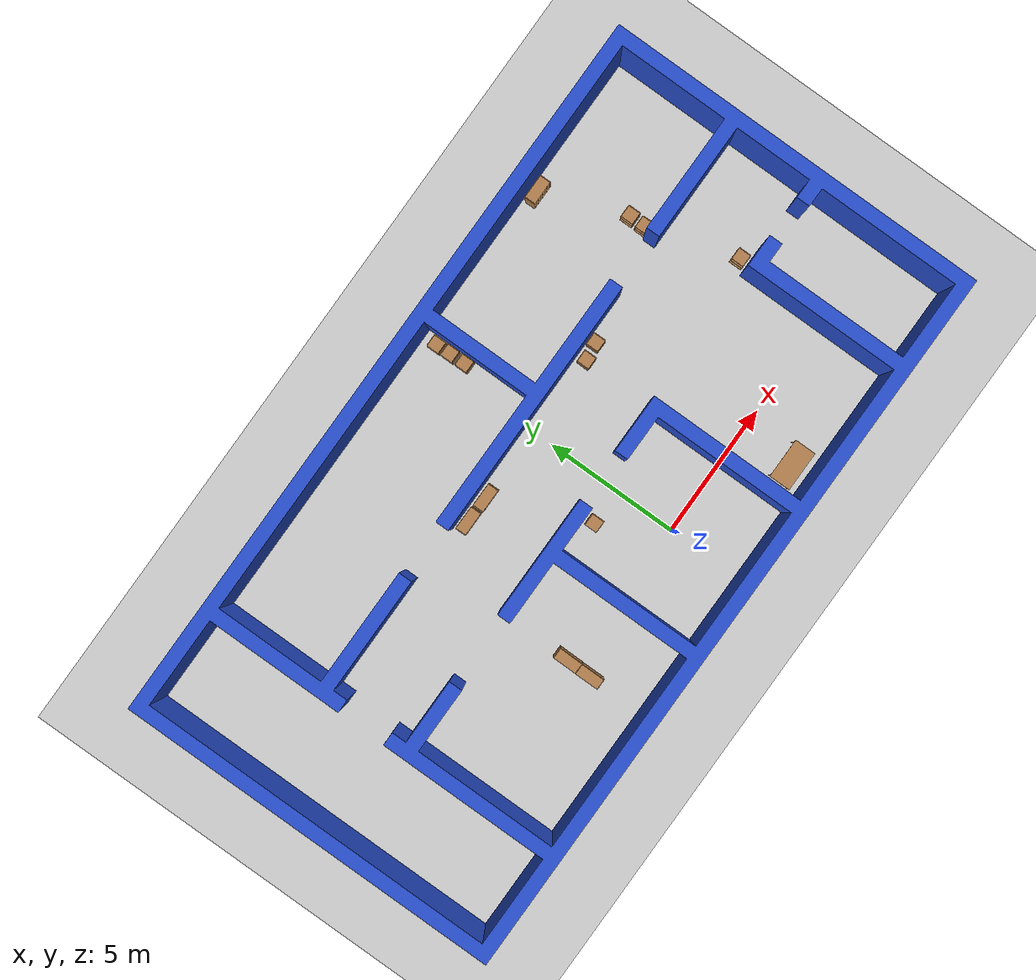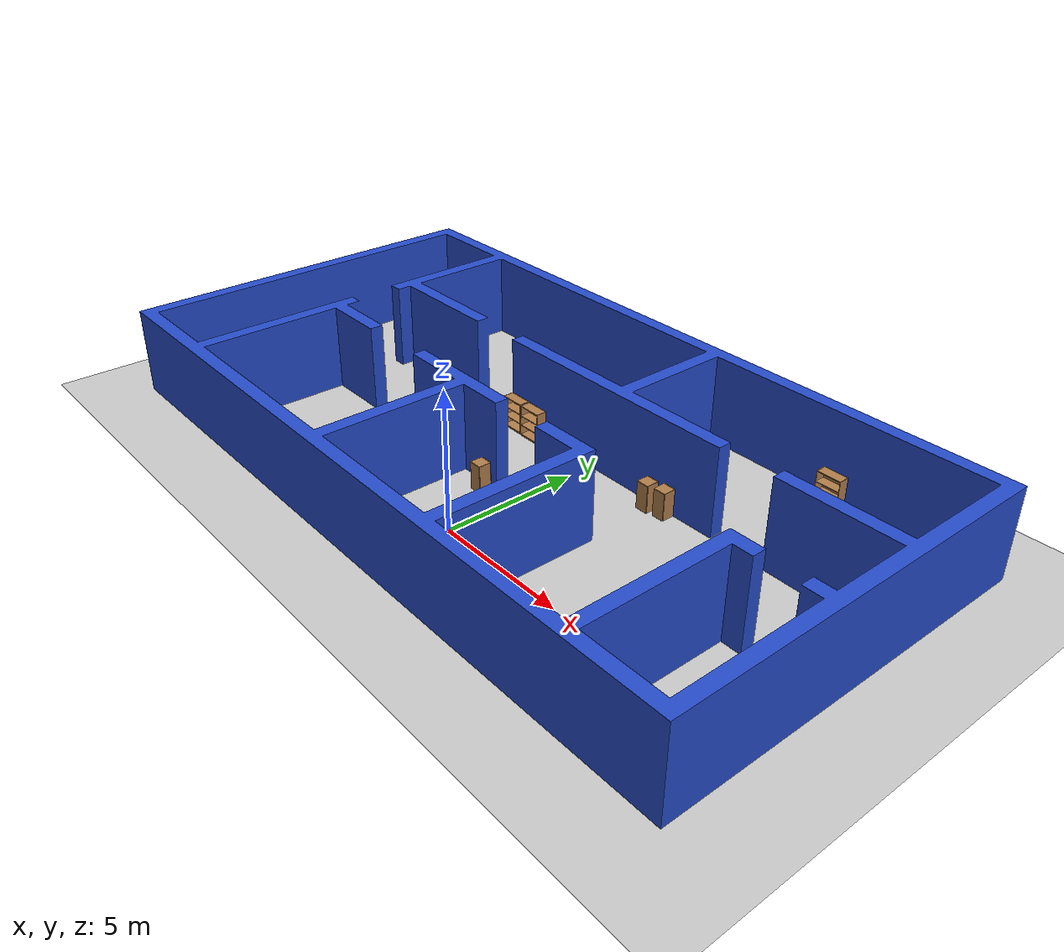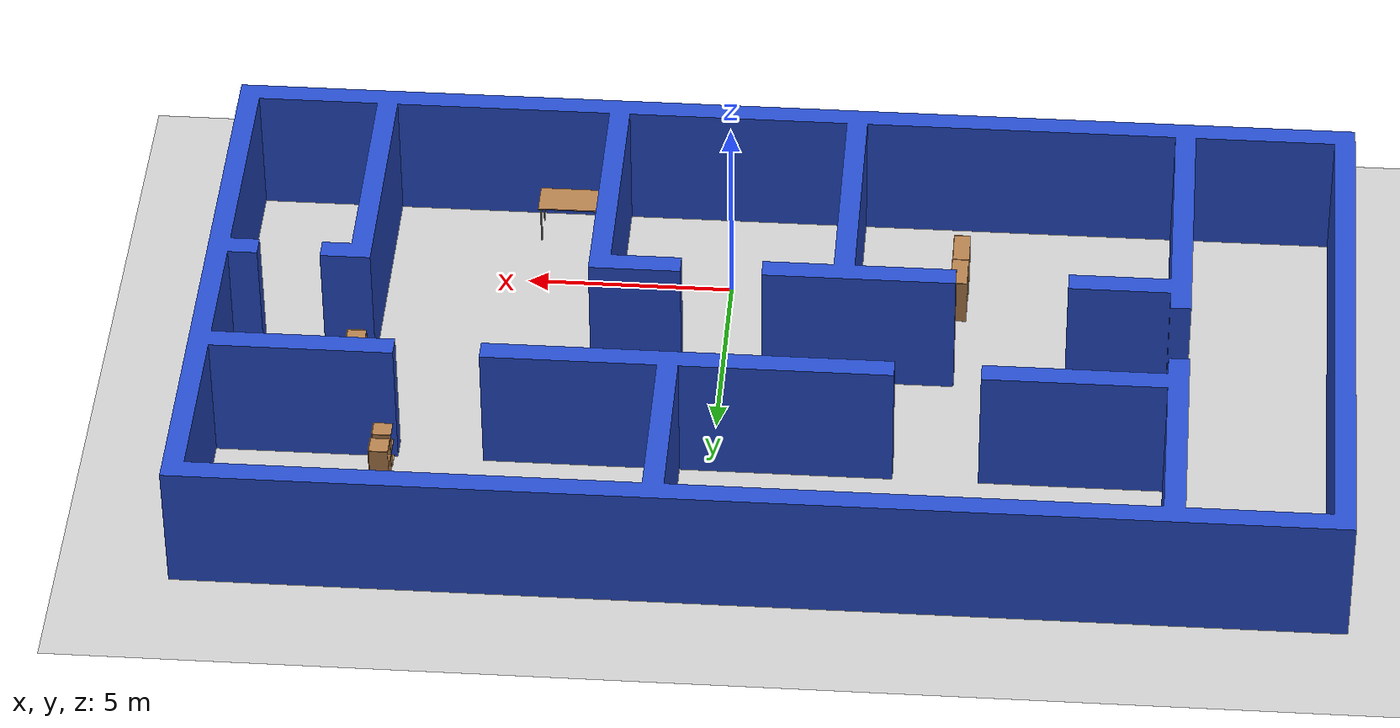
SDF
<sdf version="1.7">
 <world name="default">
  <model name="ground_plane">
   <static>1</static>
   <link name="link">
    <collision name="collision">
     <geometry><plane><normal>0 0 1</normal><size>100 100</size></plane></geometry>
     <surface>
      <contact><collide_bitmask>65535</collide_bitmask></contact>
      <friction><ode><mu>100</mu><mu2>50</mu2></ode></friction>
     </surface>
    </collision>
    <visual name="visual">
     <cast_shadows>0</cast_shadows>
     <geometry><plane><normal>0 0 1</normal><size>100 100</size></plane></geometry>
     <material>
      <script><uri>file://media/materials/scripts/gazebo.material</uri><name>Gazebo/Grey</name></script>
     </material>
    </visual>
   </link>
  </model>
  <model name="office_better">
   <static>1</static>
   <frame name="object_frame"><pose relative_to="/world">0 0 0 0 -0 0</pose></frame>
   <pose relative_to="/world">32.0153 31.9937 31.8978 0 -0 0</pose>
   <link name="link">
    <pose>-32 -32 -32 0 -0 0</pose>
    <inertial>
     <mass>239.5</mass>
     <inertia>
      <ixx>6464.83</ixx>
      <ixy>225.633</ixy>
      <ixz>0</ixz>
      <iyy>19267</iyy>
      <iyz>0</iyz>
      <izz>25283.1</izz>
     </inertia>
     <pose relative_to="link_inertia_frame">-1.35 3.89 1.68 0 -0 0</pose>
     <frame name="link_inertia_frame"><pose relative_to="link_frame">0 0 0 0 -0 0</pose></frame>
    </inertial>
    <collision name="collision">
     <max_contacts>20</max_contacts>
     <pose relative_to="collision_frame">0 0 0 0 -0 0</pose>
     <geometry><mesh><uri>./model/office_better/meshes/mesh.stl</uri><scale>1 1 1</scale></mesh></geometry>
     <frame name="collision_frame"><pose relative_to="link_frame">0 0 0 0 -0 0</pose></frame>
    </collision>
    <visual name="visual">
     <pose relative_to="visual_frame">0 0 0 0 -0 0</pose>
     <material>
      <script><uri>file://media/materials/scripts/gazebo.material</uri><name>Gazebo/Blue</name></script>
      <shader type="vertex"><normal_map>__default__</normal_map></shader>
      <lighting>1</lighting>
      <ambient>0.15 0.75 0.35 1</ambient>
      <diffuse>0.1 0.95 0.25 1</diffuse>
      <specular>0.01 0.01 0.01 1</specular>
      <emissive>0 0 0 1</emissive>
     </material>
     <geometry><mesh><uri>./model/office_better/meshes/mesh.stl</uri><scale>1 1 1</scale></mesh></geometry>
     <frame name="visual_frame"><pose relative_to="link_frame">0 0 0 0 -0 0</pose></frame>
    </visual>
    <frame name="link_frame"><pose relative_to="object_frame">0 0 0 0 -0 0</pose></frame>
   </link>
  </model>
  <model name="cabinet_0">
   <static>1</static>
   <link name="cabinet_bottom_plate">
    <inertial>
     <pose>0 0 -1 0 -0 0</pose>
     <inertia><ixx>2.05</ixx><ixy>0</ixy><ixz>0</ixz><iyy>2.05</iyy><iyz>0</iyz><izz>2.05</izz></inertia>
     <mass>25</mass>
    </inertial>
    <collision name="cabinet_bottom_plate_geom">
     <pose>0 0 0.01 0 -0 0</pose>
     <geometry><box><size>0.45 0.45 0.02</size></box></geometry>
    </collision>
    <visual name="cabinet_bottom_plate_geom_visual">
     <pose>0 0 0.01 0 -0 0</pose>
     <geometry><box><size>0.45 0.45 0.02</size></box></geometry>
     <material>
      <script><uri>file://media/materials/scripts/gazebo.material</uri><name>Gazebo/Wood</name></script>
     </material>
    </visual>
    <collision name="cabinet_bottom_plate_geom_cabinet_back_plate">
     <pose>0.235 0 0.51 0 -0 0</pose>
     <geometry><box><size>0.02 0.45 1.02</size></box></geometry>
    </collision>
    <visual name="cabinet_bottom_plate_geom_cabinet_back_plate_visual">
     <pose>0.235 0 0.51 0 -0 0</pose>
     <geometry><box><size>0.02 0.45 1.02</size></box></geometry>
     <material>
      <script><uri>file://media/materials/scripts/gazebo.material</uri><name>Gazebo/Wood</name></script>
     </material>
    </visual>
    <collision name="cabinet_bottom_plate_geom_cabinet_left_plate">
     <pose>0 0.235 0.51 0 -0 0</pose>
     <geometry><box><size>0.45 0.02 1.02</size></box></geometry>
    </collision>
    <visual name="cabinet_bottom_plate_geom_cabinet_left_plate_visual">
     <pose>0 0.235 0.51 0 -0 0</pose>
     <geometry><box><size>0.45 0.02 1.02</size></box></geometry>
     <material>
      <script><uri>file://media/materials/scripts/gazebo.material</uri><name>Gazebo/Wood</name></script>
     </material>
    </visual>
    <collision name="cabinet_bottom_plate_geom_cabinet_middle_plate">
     <pose>0 0 0.51 0 -0 0</pose>
     <geometry><box><size>0.45 0.45 0.02</size></box></geometry>
    </collision>
    <visual name="cabinet_bottom_plate_geom_cabinet_middle_plate_visual">
     <pose>0 0 0.51 0 -0 0</pose>
     <geometry><box><size>0.45 0.45 0.02</size></box></geometry>
     <material>
      <script><uri>file://media/materials/scripts/gazebo.material</uri><name>Gazebo/Wood</name></script>
     </material>
    </visual>
    <collision name="cabinet_bottom_plate_geom_cabinet_right_plate">
     <pose>0 -0.235 0.51 0 -0 0</pose>
     <geometry><box><size>0.45 0.02 1.02</size></box></geometry>
    </collision>
    <visual name="cabinet_bottom_plate_geom_cabinet_right_plate_visual">
     <pose>0 -0.235 0.51 0 -0 0</pose>
     <geometry><box><size>0.45 0.02 1.02</size></box></geometry>
     <material>
      <script><uri>file://media/materials/scripts/gazebo.material</uri><name>Gazebo/Wood</name></script>
     </material>
    </visual>
    <collision name="cabinet_bottom_plate_geom_cabinet_top_plate">
     <pose>0 0 1.01 0 -0 0</pose>
     <geometry><box><size>0.45 0.45 0.02</size></box></geometry>
    </collision>
    <visual name="cabinet_bottom_plate_geom_cabinet_top_plate_visual">
     <pose>0 0 1.01 0 -0 0</pose>
     <geometry><box><size>0.45 0.45 0.02</size></box></geometry>
     <material>
      <script><uri>file://media/materials/scripts/gazebo.material</uri><name>Gazebo/Wood</name></script>
     </material>
    </visual>
   </link>
   <pose>3.65099 5.79416 0 0 -0 0</pose>
  </model>
  <model name="cabinet_1">
   <static>1</static>
   <link name="cabinet_bottom_plate">
    <inertial>
     <pose>0 0 -1 0 -0 0</pose>
     <inertia><ixx>2.05</ixx><ixy>0</ixy><ixz>0</ixz><iyy>2.05</iyy><iyz>0</iyz><izz>2.05</izz></inertia>
     <mass>25</mass>
    </inertial>
    <collision name="cabinet_bottom_plate_geom">
     <pose>0 0 0.01 0 -0 0</pose>
     <geometry><box><size>0.45 0.45 0.02</size></box></geometry>
    </collision>
    <visual name="cabinet_bottom_plate_geom_visual">
     <pose>0 0 0.01 0 -0 0</pose>
     <geometry><box><size>0.45 0.45 0.02</size></box></geometry>
     <material>
      <script><uri>file://media/materials/scripts/gazebo.material</uri><name>Gazebo/Wood</name></script>
     </material>
    </visual>
    <collision name="cabinet_bottom_plate_geom_cabinet_back_plate">
     <pose>0.235 0 0.51 0 -0 0</pose>
     <geometry><box><size>0.02 0.45 1.02</size></box></geometry>
    </collision>
    <visual name="cabinet_bottom_plate_geom_cabinet_back_plate_visual">
     <pose>0.235 0 0.51 0 -0 0</pose>
     <geometry><box><size>0.02 0.45 1.02</size></box></geometry>
     <material>
      <script><uri>file://media/materials/scripts/gazebo.material</uri><name>Gazebo/Wood</name></script>
     </material>
    </visual>
    <collision name="cabinet_bottom_plate_geom_cabinet_left_plate">
     <pose>0 0.235 0.51 0 -0 0</pose>
     <geometry><box><size>0.45 0.02 1.02</size></box></geometry>
    </collision>
    <visual name="cabinet_bottom_plate_geom_cabinet_left_plate_visual">
     <pose>0 0.235 0.51 0 -0 0</pose>
     <geometry><box><size>0.45 0.02 1.02</size></box></geometry>
     <material>
      <script><uri>file://media/materials/scripts/gazebo.material</uri><name>Gazebo/Wood</name></script>
     </material>
    </visual>
    <collision name="cabinet_bottom_plate_geom_cabinet_middle_plate">
     <pose>0 0 0.51 0 -0 0</pose>
     <geometry><box><size>0.45 0.45 0.02</size></box></geometry>
    </collision>
    <visual name="cabinet_bottom_plate_geom_cabinet_middle_plate_visual">
     <pose>0 0 0.51 0 -0 0</pose>
     <geometry><box><size>0.45 0.45 0.02</size></box></geometry>
     <material>
      <script><uri>file://media/materials/scripts/gazebo.material</uri><name>Gazebo/Wood</name></script>
     </material>
    </visual>
    <collision name="cabinet_bottom_plate_geom_cabinet_right_plate">
     <pose>0 -0.235 0.51 0 -0 0</pose>
     <geometry><box><size>0.45 0.02 1.02</size></box></geometry>
    </collision>
    <visual name="cabinet_bottom_plate_geom_cabinet_right_plate_visual">
     <pose>0 -0.235 0.51 0 -0 0</pose>
     <geometry><box><size>0.45 0.02 1.02</size></box></geometry>
     <material>
      <script><uri>file://media/materials/scripts/gazebo.material</uri><name>Gazebo/Wood</name></script>
     </material>
    </visual>
    <collision name="cabinet_bottom_plate_geom_cabinet_top_plate">
     <pose>0 0 1.01 0 -0 0</pose>
     <geometry><box><size>0.45 0.45 0.02</size></box></geometry>
    </collision>
    <visual name="cabinet_bottom_plate_geom_cabinet_top_plate_visual">
     <pose>0 0 1.01 0 -0 0</pose>
     <geometry><box><size>0.45 0.45 0.02</size></box></geometry>
     <material>
      <script><uri>file://media/materials/scripts/gazebo.material</uri><name>Gazebo/Wood</name></script>
     </material>
    </visual>
   </link>
   <pose>2.99721 5.70704 0 0 -0 0</pose>
  </model>
  <model name="cabinet_2">
   <static>1</static>
   <link name="cabinet_bottom_plate">
    <inertial>
     <pose>0 0 -1 0 -0 0</pose>
     <inertia><ixx>2.05</ixx><ixy>0</ixy><ixz>0</ixz><iyy>2.05</iyy><iyz>0</iyz><izz>2.05</izz></inertia>
     <mass>25</mass>
    </inertial>
    <collision name="cabinet_bottom_plate_geom">
     <pose>0 0 0.01 0 -0 0</pose>
     <geometry><box><size>0.45 0.45 0.02</size></box></geometry>
    </collision>
    <visual name="cabinet_bottom_plate_geom_visual">
     <pose>0 0 0.01 0 -0 0</pose>
     <geometry><box><size>0.45 0.45 0.02</size></box></geometry>
     <material>
      <script><uri>file://media/materials/scripts/gazebo.material</uri><name>Gazebo/Wood</name></script>
     </material>
    </visual>
    <collision name="cabinet_bottom_plate_geom_cabinet_back_plate">
     <pose>0.235 0 0.51 0 -0 0</pose>
     <geometry><box><size>0.02 0.45 1.02</size></box></geometry>
    </collision>
    <visual name="cabinet_bottom_plate_geom_cabinet_back_plate_visual">
     <pose>0.235 0 0.51 0 -0 0</pose>
     <geometry><box><size>0.02 0.45 1.02</size></box></geometry>
     <material>
      <script><uri>file://media/materials/scripts/gazebo.material</uri><name>Gazebo/Wood</name></script>
     </material>
    </visual>
    <collision name="cabinet_bottom_plate_geom_cabinet_left_plate">
     <pose>0 0.235 0.51 0 -0 0</pose>
     <geometry><box><size>0.45 0.02 1.02</size></box></geometry>
    </collision>
    <visual name="cabinet_bottom_plate_geom_cabinet_left_plate_visual">
     <pose>0 0.235 0.51 0 -0 0</pose>
     <geometry><box><size>0.45 0.02 1.02</size></box></geometry>
     <material>
      <script><uri>file://media/materials/scripts/gazebo.material</uri><name>Gazebo/Wood</name></script>
     </material>
    </visual>
    <collision name="cabinet_bottom_plate_geom_cabinet_middle_plate">
     <pose>0 0 0.51 0 -0 0</pose>
     <geometry><box><size>0.45 0.45 0.02</size></box></geometry>
    </collision>
    <visual name="cabinet_bottom_plate_geom_cabinet_middle_plate_visual">
     <pose>0 0 0.51 0 -0 0</pose>
     <geometry><box><size>0.45 0.45 0.02</size></box></geometry>
     <material>
      <script><uri>file://media/materials/scripts/gazebo.material</uri><name>Gazebo/Wood</name></script>
     </material>
    </visual>
    <collision name="cabinet_bottom_plate_geom_cabinet_right_plate">
     <pose>0 -0.235 0.51 0 -0 0</pose>
     <geometry><box><size>0.45 0.02 1.02</size></box></geometry>
    </collision>
    <visual name="cabinet_bottom_plate_geom_cabinet_right_plate_visual">
     <pose>0 -0.235 0.51 0 -0 0</pose>
     <geometry><box><size>0.45 0.02 1.02</size></box></geometry>
     <material>
      <script><uri>file://media/materials/scripts/gazebo.material</uri><name>Gazebo/Wood</name></script>
     </material>
    </visual>
    <collision name="cabinet_bottom_plate_geom_cabinet_top_plate">
     <pose>0 0 1.01 0 -0 0</pose>
     <geometry><box><size>0.45 0.45 0.02</size></box></geometry>
    </collision>
    <visual name="cabinet_bottom_plate_geom_cabinet_top_plate_visual">
     <pose>0 0 1.01 0 -0 0</pose>
     <geometry><box><size>0.45 0.45 0.02</size></box></geometry>
     <material>
      <script><uri>file://media/materials/scripts/gazebo.material</uri><name>Gazebo/Wood</name></script>
     </material>
    </visual>
   </link>
   <pose>8.81846 3.4909 0 0 -0 0</pose>
  </model>
  <model name="cabinet_3">
   <static>1</static>
   <link name="cabinet_bottom_plate">
    <inertial>
     <pose>0 0 -1 0 -0 0</pose>
     <inertia><ixx>2.05</ixx><ixy>0</ixy><ixz>0</ixz><iyy>2.05</iyy><iyz>0</iyz><izz>2.05</izz></inertia>
     <mass>25</mass>
    </inertial>
    <collision name="cabinet_bottom_plate_geom">
     <pose>0 0 0.01 0 -0 0</pose>
     <geometry><box><size>0.45 0.45 0.02</size></box></geometry>
    </collision>
    <visual name="cabinet_bottom_plate_geom_visual">
     <pose>0 0 0.01 0 -0 0</pose>
     <geometry><box><size>0.45 0.45 0.02</size></box></geometry>
     <material>
      <script><uri>file://media/materials/scripts/gazebo.material</uri><name>Gazebo/Wood</name></script>
     </material>
    </visual>
    <collision name="cabinet_bottom_plate_geom_cabinet_back_plate">
     <pose>0.235 0 0.51 0 -0 0</pose>
     <geometry><box><size>0.02 0.45 1.02</size></box></geometry>
    </collision>
    <visual name="cabinet_bottom_plate_geom_cabinet_back_plate_visual">
     <pose>0.235 0 0.51 0 -0 0</pose>
     <geometry><box><size>0.02 0.45 1.02</size></box></geometry>
     <material>
      <script><uri>file://media/materials/scripts/gazebo.material</uri><name>Gazebo/Wood</name></script>
     </material>
    </visual>
    <collision name="cabinet_bottom_plate_geom_cabinet_left_plate">
     <pose>0 0.235 0.51 0 -0 0</pose>
     <geometry><box><size>0.45 0.02 1.02</size></box></geometry>
    </collision>
    <visual name="cabinet_bottom_plate_geom_cabinet_left_plate_visual">
     <pose>0 0.235 0.51 0 -0 0</pose>
     <geometry><box><size>0.45 0.02 1.02</size></box></geometry>
     <material>
      <script><uri>file://media/materials/scripts/gazebo.material</uri><name>Gazebo/Wood</name></script>
     </material>
    </visual>
    <collision name="cabinet_bottom_plate_geom_cabinet_middle_plate">
     <pose>0 0 0.51 0 -0 0</pose>
     <geometry><box><size>0.45 0.45 0.02</size></box></geometry>
    </collision>
    <visual name="cabinet_bottom_plate_geom_cabinet_middle_plate_visual">
     <pose>0 0 0.51 0 -0 0</pose>
     <geometry><box><size>0.45 0.45 0.02</size></box></geometry>
     <material>
      <script><uri>file://media/materials/scripts/gazebo.material</uri><name>Gazebo/Wood</name></script>
     </material>
    </visual>
    <collision name="cabinet_bottom_plate_geom_cabinet_right_plate">
     <pose>0 -0.235 0.51 0 -0 0</pose>
     <geometry><box><size>0.45 0.02 1.02</size></box></geometry>
    </collision>
    <visual name="cabinet_bottom_plate_geom_cabinet_right_plate_visual">
     <pose>0 -0.235 0.51 0 -0 0</pose>
     <geometry><box><size>0.45 0.02 1.02</size></box></geometry>
     <material>
      <script><uri>file://media/materials/scripts/gazebo.material</uri><name>Gazebo/Wood</name></script>
     </material>
    </visual>
    <collision name="cabinet_bottom_plate_geom_cabinet_top_plate">
     <pose>0 0 1.01 0 -0 0</pose>
     <geometry><box><size>0.45 0.45 0.02</size></box></geometry>
    </collision>
    <visual name="cabinet_bottom_plate_geom_cabinet_top_plate_visual">
     <pose>0 0 1.01 0 -0 0</pose>
     <geometry><box><size>0.45 0.45 0.02</size></box></geometry>
     <material>
      <script><uri>file://media/materials/scripts/gazebo.material</uri><name>Gazebo/Wood</name></script>
     </material>
    </visual>
   </link>
   <pose>7.79963 6.74827 0 0 -0 0</pose>
  </model>
  <model name="cabinet_4">
   <static>1</static>
   <link name="cabinet_bottom_plate">
    <inertial>
     <pose>0 0 -1 0 -0 0</pose>
     <inertia><ixx>2.05</ixx><ixy>0</ixy><ixz>0</ixz><iyy>2.05</iyy><iyz>0</iyz><izz>2.05</izz></inertia>
     <mass>25</mass>
    </inertial>
    <collision name="cabinet_bottom_plate_geom">
     <pose>0 0 0.01 0 -0 0</pose>
     <geometry><box><size>0.45 0.45 0.02</size></box></geometry>
    </collision>
    <visual name="cabinet_bottom_plate_geom_visual">
     <pose>0 0 0.01 0 -0 0</pose>
     <geometry><box><size>0.45 0.45 0.02</size></box></geometry>
     <material>
      <script><uri>file://media/materials/scripts/gazebo.material</uri><name>Gazebo/Wood</name></script>
     </material>
    </visual>
    <collision name="cabinet_bottom_plate_geom_cabinet_back_plate">
     <pose>0.235 0 0.51 0 -0 0</pose>
     <geometry><box><size>0.02 0.45 1.02</size></box></geometry>
    </collision>
    <visual name="cabinet_bottom_plate_geom_cabinet_back_plate_visual">
     <pose>0.235 0 0.51 0 -0 0</pose>
     <geometry><box><size>0.02 0.45 1.02</size></box></geometry>
     <material>
      <script><uri>file://media/materials/scripts/gazebo.material</uri><name>Gazebo/Wood</name></script>
     </material>
    </visual>
    <collision name="cabinet_bottom_plate_geom_cabinet_left_plate">
     <pose>0 0.235 0.51 0 -0 0</pose>
     <geometry><box><size>0.45 0.02 1.02</size></box></geometry>
    </collision>
    <visual name="cabinet_bottom_plate_geom_cabinet_left_plate_visual">
     <pose>0 0.235 0.51 0 -0 0</pose>
     <geometry><box><size>0.45 0.02 1.02</size></box></geometry>
     <material>
      <script><uri>file://media/materials/scripts/gazebo.material</uri><name>Gazebo/Wood</name></script>
     </material>
    </visual>
    <collision name="cabinet_bottom_plate_geom_cabinet_middle_plate">
     <pose>0 0 0.51 0 -0 0</pose>
     <geometry><box><size>0.45 0.45 0.02</size></box></geometry>
    </collision>
    <visual name="cabinet_bottom_plate_geom_cabinet_middle_plate_visual">
     <pose>0 0 0.51 0 -0 0</pose>
     <geometry><box><size>0.45 0.45 0.02</size></box></geometry>
     <material>
      <script><uri>file://media/materials/scripts/gazebo.material</uri><name>Gazebo/Wood</name></script>
     </material>
    </visual>
    <collision name="cabinet_bottom_plate_geom_cabinet_right_plate">
     <pose>0 -0.235 0.51 0 -0 0</pose>
     <geometry><box><size>0.45 0.02 1.02</size></box></geometry>
    </collision>
    <visual name="cabinet_bottom_plate_geom_cabinet_right_plate_visual">
     <pose>0 -0.235 0.51 0 -0 0</pose>
     <geometry><box><size>0.45 0.02 1.02</size></box></geometry>
     <material>
      <script><uri>file://media/materials/scripts/gazebo.material</uri><name>Gazebo/Wood</name></script>
     </material>
    </visual>
    <collision name="cabinet_bottom_plate_geom_cabinet_top_plate">
     <pose>0 0 1.01 0 -0 0</pose>
     <geometry><box><size>0.45 0.45 0.02</size></box></geometry>
    </collision>
    <visual name="cabinet_bottom_plate_geom_cabinet_top_plate_visual">
     <pose>0 0 1.01 0 -0 0</pose>
     <geometry><box><size>0.45 0.45 0.02</size></box></geometry>
     <material>
      <script><uri>file://media/materials/scripts/gazebo.material</uri><name>Gazebo/Wood</name></script>
     </material>
    </visual>
   </link>
   <pose>7.81238 7.34155 0 0 -0 0</pose>
  </model>
  <model name="cabinet_5">
   <static>1</static>
   <link name="cabinet_bottom_plate">
    <inertial>
     <pose>0 0 -1 0 -0 0</pose>
     <inertia><ixx>2.05</ixx><ixy>0</ixy><ixz>0</ixz><iyy>2.05</iyy><iyz>0</iyz><izz>2.05</izz></inertia>
     <mass>25</mass>
    </inertial>
    <collision name="cabinet_bottom_plate_geom">
     <pose>0 0 0.01 0 -0 0</pose>
     <geometry><box><size>0.45 0.45 0.02</size></box></geometry>
    </collision>
    <visual name="cabinet_bottom_plate_geom_visual">
     <pose>0 0 0.01 0 -0 0</pose>
     <geometry><box><size>0.45 0.45 0.02</size></box></geometry>
     <material>
      <script><uri>file://media/materials/scripts/gazebo.material</uri><name>Gazebo/Wood</name></script>
     </material>
    </visual>
    <collision name="cabinet_bottom_plate_geom_cabinet_back_plate">
     <pose>0.235 0 0.51 0 -0 0</pose>
     <geometry><box><size>0.02 0.45 1.02</size></box></geometry>
    </collision>
    <visual name="cabinet_bottom_plate_geom_cabinet_back_plate_visual">
     <pose>0.235 0 0.51 0 -0 0</pose>
     <geometry><box><size>0.02 0.45 1.02</size></box></geometry>
     <material>
      <script><uri>file://media/materials/scripts/gazebo.material</uri><name>Gazebo/Wood</name></script>
     </material>
    </visual>
    <collision name="cabinet_bottom_plate_geom_cabinet_left_plate">
     <pose>0 0.235 0.51 0 -0 0</pose>
     <geometry><box><size>0.45 0.02 1.02</size></box></geometry>
    </collision>
    <visual name="cabinet_bottom_plate_geom_cabinet_left_plate_visual">
     <pose>0 0.235 0.51 0 -0 0</pose>
     <geometry><box><size>0.45 0.02 1.02</size></box></geometry>
     <material>
      <script><uri>file://media/materials/scripts/gazebo.material</uri><name>Gazebo/Wood</name></script>
     </material>
    </visual>
    <collision name="cabinet_bottom_plate_geom_cabinet_middle_plate">
     <pose>0 0 0.51 0 -0 0</pose>
     <geometry><box><size>0.45 0.45 0.02</size></box></geometry>
    </collision>
    <visual name="cabinet_bottom_plate_geom_cabinet_middle_plate_visual">
     <pose>0 0 0.51 0 -0 0</pose>
     <geometry><box><size>0.45 0.45 0.02</size></box></geometry>
     <material>
      <script><uri>file://media/materials/scripts/gazebo.material</uri><name>Gazebo/Wood</name></script>
     </material>
    </visual>
    <collision name="cabinet_bottom_plate_geom_cabinet_right_plate">
     <pose>0 -0.235 0.51 0 -0 0</pose>
     <geometry><box><size>0.45 0.02 1.02</size></box></geometry>
    </collision>
    <visual name="cabinet_bottom_plate_geom_cabinet_right_plate_visual">
     <pose>0 -0.235 0.51 0 -0 0</pose>
     <geometry><box><size>0.45 0.02 1.02</size></box></geometry>
     <material>
      <script><uri>file://media/materials/scripts/gazebo.material</uri><name>Gazebo/Wood</name></script>
     </material>
    </visual>
    <collision name="cabinet_bottom_plate_geom_cabinet_top_plate">
     <pose>0 0 1.01 0 -0 0</pose>
     <geometry><box><size>0.45 0.45 0.02</size></box></geometry>
    </collision>
    <visual name="cabinet_bottom_plate_geom_cabinet_top_plate_visual">
     <pose>0 0 1.01 0 -0 0</pose>
     <geometry><box><size>0.45 0.45 0.02</size></box></geometry>
     <material>
      <script><uri>file://media/materials/scripts/gazebo.material</uri><name>Gazebo/Wood</name></script>
     </material>
    </visual>
   </link>
   <pose>-1.32398 2.28716 0 0 -0 0</pose>
  </model>
  <model name="bookshelf_4">
   <static>1</static>
   <link name="link">
    <inertial><mass>1</mass></inertial>
    <collision name="back">
     <pose>0 0.005 0.6 0 -0 0</pose>
     <geometry><box><size>0.9 0.01 1.2</size></box></geometry>
    </collision>
    <visual name="visual1">
     <pose>0 0.005 0.6 0 -0 0</pose>
     <geometry><box><size>0.9 0.01 1.2</size></box></geometry>
     <material>
      <script><uri>file://media/materials/scripts/gazebo.material</uri><name>Gazebo/Wood</name></script>
     </material>
    </visual>
    <collision name="left_side">
     <pose>0.45 -0.195 0.6 0 -0 0</pose>
     <geometry><box><size>0.02 0.4 1.2</size></box></geometry>
    </collision>
    <visual name="visual2">
     <pose>0.45 -0.195 0.6 0 -0 0</pose>
     <geometry><box><size>0.02 0.4 1.2</size></box></geometry>
     <material>
      <script><uri>file://media/materials/scripts/gazebo.material</uri><name>Gazebo/Wood</name></script>
     </material>
    </visual>
    <collision name="right_side">
     <pose>-0.45 -0.195 0.6 0 -0 0</pose>
     <geometry><box><size>0.02 0.4 1.2</size></box></geometry>
    </collision>
    <visual name="visual3">
     <pose>-0.45 -0.195 0.6 0 -0 0</pose>
     <geometry><box><size>0.02 0.4 1.2</size></box></geometry>
     <material>
      <script><uri>file://media/materials/scripts/gazebo.material</uri><name>Gazebo/Wood</name></script>
     </material>
    </visual>
    <collision name="bottom">
     <pose>0 -0.195 0.03 0 -0 0</pose>
     <geometry><box><size>0.88 0.4 0.06</size></box></geometry>
    </collision>
    <visual name="visual4">
     <pose>0 -0.195 0.03 0 -0 0</pose>
     <geometry><box><size>0.88 0.4 0.06</size></box></geometry>
     <material>
      <script><uri>file://media/materials/scripts/gazebo.material</uri><name>Gazebo/Wood</name></script>
     </material>
    </visual>
    <collision name="top">
     <pose>0 -0.195 1.19 0 -0 0</pose>
     <geometry><box><size>0.88 0.4 0.02</size></box></geometry>
    </collision>
    <visual name="visual5">
     <pose>0 -0.195 1.19 0 -0 0</pose>
     <geometry><box><size>0.88 0.4 0.02</size></box></geometry>
     <material>
      <script><uri>file://media/materials/scripts/gazebo.material</uri><name>Gazebo/Wood</name></script>
     </material>
    </visual>
    <collision name="low_shelf">
     <pose>0 -0.195 0.43 0 -0 0</pose>
     <geometry><box><size>0.88 0.4 0.02</size></box></geometry>
    </collision>
    <visual name="visual6">
     <pose>0 -0.195 0.43 0 -0 0</pose>
     <geometry><box><size>0.88 0.4 0.02</size></box></geometry>
     <material>
      <script><uri>file://media/materials/scripts/gazebo.material</uri><name>Gazebo/Wood</name></script>
     </material>
    </visual>
    <collision name="high_shelf">
     <pose>0 -0.195 0.8 0 -0 0</pose>
     <geometry><box><size>0.88 0.4 0.02</size></box></geometry>
    </collision>
    <visual name="visual7">
     <pose>0 -0.195 0.8 0 -0 0</pose>
     <geometry><box><size>0.88 0.4 0.02</size></box></geometry>
     <material>
      <script><uri>file://media/materials/scripts/gazebo.material</uri><name>Gazebo/Wood</name></script>
     </material>
    </visual>
   </link>
   <pose>6.65801 10.5552 0 0 -0 0</pose>
  </model>
  <model name="bookshelf_5">
   <static>1</static>
   <link name="link">
    <inertial><mass>1</mass></inertial>
    <collision name="back">
     <pose>0 0.005 0.6 0 -0 0</pose>
     <geometry><box><size>0.9 0.01 1.2</size></box></geometry>
    </collision>
    <visual name="visual1">
     <pose>0 0.005 0.6 0 -0 0</pose>
     <geometry><box><size>0.9 0.01 1.2</size></box></geometry>
     <material>
      <script><uri>file://media/materials/scripts/gazebo.material</uri><name>Gazebo/Wood</name></script>
     </material>
    </visual>
    <collision name="left_side">
     <pose>0.45 -0.195 0.6 0 -0 0</pose>
     <geometry><box><size>0.02 0.4 1.2</size></box></geometry>
    </collision>
    <visual name="visual2">
     <pose>0.45 -0.195 0.6 0 -0 0</pose>
     <geometry><box><size>0.02 0.4 1.2</size></box></geometry>
     <material>
      <script><uri>file://media/materials/scripts/gazebo.material</uri><name>Gazebo/Wood</name></script>
     </material>
    </visual>
    <collision name="right_side">
     <pose>-0.45 -0.195 0.6 0 -0 0</pose>
     <geometry><box><size>0.02 0.4 1.2</size></box></geometry>
    </collision>
    <visual name="visual3">
     <pose>-0.45 -0.195 0.6 0 -0 0</pose>
     <geometry><box><size>0.02 0.4 1.2</size></box></geometry>
     <material>
      <script><uri>file://media/materials/scripts/gazebo.material</uri><name>Gazebo/Wood</name></script>
     </material>
    </visual>
    <collision name="bottom">
     <pose>0 -0.195 0.03 0 -0 0</pose>
     <geometry><box><size>0.88 0.4 0.06</size></box></geometry>
    </collision>
    <visual name="visual4">
     <pose>0 -0.195 0.03 0 -0 0</pose>
     <geometry><box><size>0.88 0.4 0.06</size></box></geometry>
     <material>
      <script><uri>file://media/materials/scripts/gazebo.material</uri><name>Gazebo/Wood</name></script>
     </material>
    </visual>
    <collision name="top">
     <pose>0 -0.195 1.19 0 -0 0</pose>
     <geometry><box><size>0.88 0.4 0.02</size></box></geometry>
    </collision>
    <visual name="visual5">
     <pose>0 -0.195 1.19 0 -0 0</pose>
     <geometry><box><size>0.88 0.4 0.02</size></box></geometry>
     <material>
      <script><uri>file://media/materials/scripts/gazebo.material</uri><name>Gazebo/Wood</name></script>
     </material>
    </visual>
    <collision name="low_shelf">
     <pose>0 -0.195 0.43 0 -0 0</pose>
     <geometry><box><size>0.88 0.4 0.02</size></box></geometry>
    </collision>
    <visual name="visual6">
     <pose>0 -0.195 0.43 0 -0 0</pose>
     <geometry><box><size>0.88 0.4 0.02</size></box></geometry>
     <material>
      <script><uri>file://media/materials/scripts/gazebo.material</uri><name>Gazebo/Wood</name></script>
     </material>
    </visual>
    <collision name="high_shelf">
     <pose>0 -0.195 0.8 0 -0 0</pose>
     <geometry><box><size>0.88 0.4 0.02</size></box></geometry>
    </collision>
    <visual name="visual7">
     <pose>0 -0.195 0.8 0 -0 0</pose>
     <geometry><box><size>0.88 0.4 0.02</size></box></geometry>
     <material>
      <script><uri>file://media/materials/scripts/gazebo.material</uri><name>Gazebo/Wood</name></script>
     </material>
    </visual>
   </link>
   <pose>-3.72242 5.96832 0 0 -0 0</pose>
  </model>
  <model name="bookshelf_6">
   <static>1</static>
   <link name="link">
    <inertial><mass>1</mass></inertial>
    <collision name="back">
     <pose>0 0.005 0.6 0 -0 0</pose>
     <geometry><box><size>0.9 0.01 1.2</size></box></geometry>
    </collision>
    <visual name="visual1">
     <pose>0 0.005 0.6 0 -0 0</pose>
     <geometry><box><size>0.9 0.01 1.2</size></box></geometry>
     <material>
      <script><uri>file://media/materials/scripts/gazebo.material</uri><name>Gazebo/Wood</name></script>
     </material>
    </visual>
    <collision name="left_side">
     <pose>0.45 -0.195 0.6 0 -0 0</pose>
     <geometry><box><size>0.02 0.4 1.2</size></box></geometry>
    </collision>
    <visual name="visual2">
     <pose>0.45 -0.195 0.6 0 -0 0</pose>
     <geometry><box><size>0.02 0.4 1.2</size></box></geometry>
     <material>
      <script><uri>file://media/materials/scripts/gazebo.material</uri><name>Gazebo/Wood</name></script>
     </material>
    </visual>
    <collision name="right_side">
     <pose>-0.45 -0.195 0.6 0 -0 0</pose>
     <geometry><box><size>0.02 0.4 1.2</size></box></geometry>
    </collision>
    <visual name="visual3">
     <pose>-0.45 -0.195 0.6 0 -0 0</pose>
     <geometry><box><size>0.02 0.4 1.2</size></box></geometry>
     <material>
      <script><uri>file://media/materials/scripts/gazebo.material</uri><name>Gazebo/Wood</name></script>
     </material>
    </visual>
    <collision name="bottom">
     <pose>0 -0.195 0.03 0 -0 0</pose>
     <geometry><box><size>0.88 0.4 0.06</size></box></geometry>
    </collision>
    <visual name="visual4">
     <pose>0 -0.195 0.03 0 -0 0</pose>
     <geometry><box><size>0.88 0.4 0.06</size></box></geometry>
     <material>
      <script><uri>file://media/materials/scripts/gazebo.material</uri><name>Gazebo/Wood</name></script>
     </material>
    </visual>
    <collision name="top">
     <pose>0 -0.195 1.19 0 -0 0</pose>
     <geometry><box><size>0.88 0.4 0.02</size></box></geometry>
    </collision>
    <visual name="visual5">
     <pose>0 -0.195 1.19 0 -0 0</pose>
     <geometry><box><size>0.88 0.4 0.02</size></box></geometry>
     <material>
      <script><uri>file://media/materials/scripts/gazebo.material</uri><name>Gazebo/Wood</name></script>
     </material>
    </visual>
    <collision name="low_shelf">
     <pose>0 -0.195 0.43 0 -0 0</pose>
     <geometry><box><size>0.88 0.4 0.02</size></box></geometry>
    </collision>
    <visual name="visual6">
     <pose>0 -0.195 0.43 0 -0 0</pose>
     <geometry><box><size>0.88 0.4 0.02</size></box></geometry>
     <material>
      <script><uri>file://media/materials/scripts/gazebo.material</uri><name>Gazebo/Wood</name></script>
     </material>
    </visual>
    <collision name="high_shelf">
     <pose>0 -0.195 0.8 0 -0 0</pose>
     <geometry><box><size>0.88 0.4 0.02</size></box></geometry>
    </collision>
    <visual name="visual7">
     <pose>0 -0.195 0.8 0 -0 0</pose>
     <geometry><box><size>0.88 0.4 0.02</size></box></geometry>
     <material>
      <script><uri>file://media/materials/scripts/gazebo.material</uri><name>Gazebo/Wood</name></script>
     </material>
    </visual>
   </link>
   <pose>-2.75763 5.94778 0 0 -0 0</pose>
  </model>
  <model name="table">
   <static>1</static>
   <link name="link">
    <collision name="surface">
     <pose>0 0 1 0 -0 0</pose>
     <geometry><box><size>1.5 0.8 0.03</size></box></geometry>
     <surface><friction><ode><mu>0.6</mu><mu2>0.6</mu2></ode></friction></surface>
    </collision>
    <visual name="visual1">
     <pose>0 0 1 0 -0 0</pose>
     <geometry><box><size>1.5 0.8 0.03</size></box></geometry>
     <material>
      <script><uri>file://media/materials/scripts/gazebo.material</uri><name>Gazebo/Wood</name></script>
     </material>
    </visual>
    <collision name="front_left_leg">
     <pose>0.68 0.38 0.5 0 -0 0</pose>
     <geometry><cylinder><radius>0.02</radius><length>1</length></cylinder></geometry>
    </collision>
    <visual name="front_left_leg">
     <pose>0.68 0.38 0.5 0 -0 0</pose>
     <geometry><cylinder><radius>0.02</radius><length>1</length></cylinder></geometry>
     <material>
      <script><uri>file://media/materials/scripts/gazebo.material</uri><name>Gazebo/Grey</name></script>
     </material>
    </visual>
    <collision name="front_right_leg">
     <pose>0.68 -0.38 0.5 0 -0 0</pose>
     <geometry><cylinder><radius>0.02</radius><length>1</length></cylinder></geometry>
    </collision>
    <visual name="front_right_leg">
     <pose>0.68 -0.38 0.5 0 -0 0</pose>
     <geometry><cylinder><radius>0.02</radius><length>1</length></cylinder></geometry>
     <material>
      <script><uri>file://media/materials/scripts/gazebo.material</uri><name>Gazebo/Grey</name></script>
     </material>
    </visual>
    <collision name="back_right_leg">
     <pose>-0.68 -0.38 0.5 0 -0 0</pose>
     <geometry><cylinder><radius>0.02</radius><length>1</length></cylinder></geometry>
    </collision>
    <visual name="back_right_leg">
     <pose>-0.68 -0.38 0.5 0 -0 0</pose>
     <geometry><cylinder><radius>0.02</radius><length>1</length></cylinder></geometry>
     <material>
      <script><uri>file://media/materials/scripts/gazebo.material</uri><name>Gazebo/Grey</name></script>
     </material>
    </visual>
    <collision name="back_left_leg">
     <pose>-0.68 0.38 0.5 0 -0 0</pose>
     <geometry><cylinder><radius>0.02</radius><length>1</length></cylinder></geometry>
    </collision>
    <visual name="back_left_leg">
     <pose>-0.68 0.38 0.5 0 -0 0</pose>
     <geometry><cylinder><radius>0.02</radius><length>1</length></cylinder></geometry>
     <material>
      <script><uri>file://media/materials/scripts/gazebo.material</uri><name>Gazebo/Grey</name></script>
     </material>
    </visual>
   </link>
   <pose>4.14916 -1.98092 0 0 -0 0</pose>
  </model>
  <model name="bookshelf_9">
   <static>1</static>
   <link name="link">
    <inertial><mass>1</mass></inertial>
    <collision name="back">
     <pose>0 0.005 0.6 0 -0 0</pose>
     <geometry><box><size>0.9 0.01 1.2</size></box></geometry>
    </collision>
    <visual name="visual1">
     <pose>0 0.005 0.6 0 -0 0</pose>
     <geometry><box><size>0.9 0.01 1.2</size></box></geometry>
     <material>
      <script><uri>file://media/materials/scripts/gazebo.material</uri><name>Gazebo/Wood</name></script>
     </material>
    </visual>
    <collision name="left_side">
     <pose>0.45 -0.195 0.6 0 -0 0</pose>
     <geometry><box><size>0.02 0.4 1.2</size></box></geometry>
    </collision>
    <visual name="visual2">
     <pose>0.45 -0.195 0.6 0 -0 0</pose>
     <geometry><box><size>0.02 0.4 1.2</size></box></geometry>
     <material>
      <script><uri>file://media/materials/scripts/gazebo.material</uri><name>Gazebo/Wood</name></script>
     </material>
    </visual>
    <collision name="right_side">
     <pose>-0.45 -0.195 0.6 0 -0 0</pose>
     <geometry><box><size>0.02 0.4 1.2</size></box></geometry>
    </collision>
    <visual name="visual3">
     <pose>-0.45 -0.195 0.6 0 -0 0</pose>
     <geometry><box><size>0.02 0.4 1.2</size></box></geometry>
     <material>
      <script><uri>file://media/materials/scripts/gazebo.material</uri><name>Gazebo/Wood</name></script>
     </material>
    </visual>
    <collision name="bottom">
     <pose>0 -0.195 0.03 0 -0 0</pose>
     <geometry><box><size>0.88 0.4 0.06</size></box></geometry>
    </collision>
    <visual name="visual4">
     <pose>0 -0.195 0.03 0 -0 0</pose>
     <geometry><box><size>0.88 0.4 0.06</size></box></geometry>
     <material>
      <script><uri>file://media/materials/scripts/gazebo.material</uri><name>Gazebo/Wood</name></script>
     </material>
    </visual>
    <collision name="top">
     <pose>0 -0.195 1.19 0 -0 0</pose>
     <geometry><box><size>0.88 0.4 0.02</size></box></geometry>
    </collision>
    <visual name="visual5">
     <pose>0 -0.195 1.19 0 -0 0</pose>
     <geometry><box><size>0.88 0.4 0.02</size></box></geometry>
     <material>
      <script><uri>file://media/materials/scripts/gazebo.material</uri><name>Gazebo/Wood</name></script>
     </material>
    </visual>
    <collision name="low_shelf">
     <pose>0 -0.195 0.43 0 -0 0</pose>
     <geometry><box><size>0.88 0.4 0.02</size></box></geometry>
    </collision>
    <visual name="visual6">
     <pose>0 -0.195 0.43 0 -0 0</pose>
     <geometry><box><size>0.88 0.4 0.02</size></box></geometry>
     <material>
      <script><uri>file://media/materials/scripts/gazebo.material</uri><name>Gazebo/Wood</name></script>
     </material>
    </visual>
    <collision name="high_shelf">
     <pose>0 -0.195 0.8 0 -0 0</pose>
     <geometry><box><size>0.88 0.4 0.02</size></box></geometry>
    </collision>
    <visual name="visual7">
     <pose>0 -0.195 0.8 0 -0 0</pose>
     <geometry><box><size>0.88 0.4 0.02</size></box></geometry>
     <material>
      <script><uri>file://media/materials/scripts/gazebo.material</uri><name>Gazebo/Wood</name></script>
     </material>
    </visual>
   </link>
   <pose>-5.39889 0.322234 0 0 0 -1.57618</pose>
  </model>
  <model name="bookshelf_10">
   <static>1</static>
   <link name="link">
    <inertial><mass>1</mass></inertial>
    <collision name="back">
     <pose>0 0.005 0.6 0 -0 0</pose>
     <geometry><box><size>0.9 0.01 1.2</size></box></geometry>
    </collision>
    <visual name="visual1">
     <pose>0 0.005 0.6 0 -0 0</pose>
     <geometry><box><size>0.9 0.01 1.2</size></box></geometry>
     <material>
      <script><uri>file://media/materials/scripts/gazebo.material</uri><name>Gazebo/Wood</name></script>
     </material>
    </visual>
    <collision name="left_side">
     <pose>0.45 -0.195 0.6 0 -0 0</pose>
     <geometry><box><size>0.02 0.4 1.2</size></box></geometry>
    </collision>
    <visual name="visual2">
     <pose>0.45 -0.195 0.6 0 -0 0</pose>
     <geometry><box><size>0.02 0.4 1.2</size></box></geometry>
     <material>
      <script><uri>file://media/materials/scripts/gazebo.material</uri><name>Gazebo/Wood</name></script>
     </material>
    </visual>
    <collision name="right_side">
     <pose>-0.45 -0.195 0.6 0 -0 0</pose>
     <geometry><box><size>0.02 0.4 1.2</size></box></geometry>
    </collision>
    <visual name="visual3">
     <pose>-0.45 -0.195 0.6 0 -0 0</pose>
     <geometry><box><size>0.02 0.4 1.2</size></box></geometry>
     <material>
      <script><uri>file://media/materials/scripts/gazebo.material</uri><name>Gazebo/Wood</name></script>
     </material>
    </visual>
    <collision name="bottom">
     <pose>0 -0.195 0.03 0 -0 0</pose>
     <geometry><box><size>0.88 0.4 0.06</size></box></geometry>
    </collision>
    <visual name="visual4">
     <pose>0 -0.195 0.03 0 -0 0</pose>
     <geometry><box><size>0.88 0.4 0.06</size></box></geometry>
     <material>
      <script><uri>file://media/materials/scripts/gazebo.material</uri><name>Gazebo/Wood</name></script>
     </material>
    </visual>
    <collision name="top">
     <pose>0 -0.195 1.19 0 -0 0</pose>
     <geometry><box><size>0.88 0.4 0.02</size></box></geometry>
    </collision>
    <visual name="visual5">
     <pose>0 -0.195 1.19 0 -0 0</pose>
     <geometry><box><size>0.88 0.4 0.02</size></box></geometry>
     <material>
      <script><uri>file://media/materials/scripts/gazebo.material</uri><name>Gazebo/Wood</name></script>
     </material>
    </visual>
    <collision name="low_shelf">
     <pose>0 -0.195 0.43 0 -0 0</pose>
     <geometry><box><size>0.88 0.4 0.02</size></box></geometry>
    </collision>
    <visual name="visual6">
     <pose>0 -0.195 0.43 0 -0 0</pose>
     <geometry><box><size>0.88 0.4 0.02</size></box></geometry>
     <material>
      <script><uri>file://media/materials/scripts/gazebo.material</uri><name>Gazebo/Wood</name></script>
     </material>
    </visual>
    <collision name="high_shelf">
     <pose>0 -0.195 0.8 0 -0 0</pose>
     <geometry><box><size>0.88 0.4 0.02</size></box></geometry>
    </collision>
    <visual name="visual7">
     <pose>0 -0.195 0.8 0 -0 0</pose>
     <geometry><box><size>0.88 0.4 0.02</size></box></geometry>
     <material>
      <script><uri>file://media/materials/scripts/gazebo.material</uri><name>Gazebo/Wood</name></script>
     </material>
    </visual>
   </link>
   <pose>-5.40835 -0.581479 0 0 0 -1.56873</pose>
  </model>
  <model name="cabinet_10">
   <static>1</static>
   <link name="cabinet_bottom_plate">
    <inertial>
     <pose>0 0 -1 0 -0 0</pose>
     <inertia><ixx>2.05</ixx><ixy>0</ixy><ixz>0</ixz><iyy>2.05</iyy><iyz>0</iyz><izz>2.05</izz></inertia>
     <mass>25</mass>
    </inertial>
    <collision name="cabinet_bottom_plate_geom">
     <pose>0 0 0.01 0 -0 0</pose>
     <geometry><box><size>0.45 0.45 0.02</size></box></geometry>
    </collision>
    <visual name="cabinet_bottom_plate_geom_visual">
     <pose>0 0 0.01 0 -0 0</pose>
     <geometry><box><size>0.45 0.45 0.02</size></box></geometry>
     <material>
      <script><uri>file://media/materials/scripts/gazebo.material</uri><name>Gazebo/Wood</name></script>
     </material>
    </visual>
    <collision name="cabinet_bottom_plate_geom_cabinet_back_plate">
     <pose>0.235 0 0.51 0 -0 0</pose>
     <geometry><box><size>0.02 0.45 1.02</size></box></geometry>
    </collision>
    <visual name="cabinet_bottom_plate_geom_cabinet_back_plate_visual">
     <pose>0.235 0 0.51 0 -0 0</pose>
     <geometry><box><size>0.02 0.45 1.02</size></box></geometry>
     <material>
      <script><uri>file://media/materials/scripts/gazebo.material</uri><name>Gazebo/Wood</name></script>
     </material>
    </visual>
    <collision name="cabinet_bottom_plate_geom_cabinet_left_plate">
     <pose>0 0.235 0.51 0 -0 0</pose>
     <geometry><box><size>0.45 0.02 1.02</size></box></geometry>
    </collision>
    <visual name="cabinet_bottom_plate_geom_cabinet_left_plate_visual">
     <pose>0 0.235 0.51 0 -0 0</pose>
     <geometry><box><size>0.45 0.02 1.02</size></box></geometry>
     <material>
      <script><uri>file://media/materials/scripts/gazebo.material</uri><name>Gazebo/Wood</name></script>
     </material>
    </visual>
    <collision name="cabinet_bottom_plate_geom_cabinet_middle_plate">
     <pose>0 0 0.51 0 -0 0</pose>
     <geometry><box><size>0.45 0.45 0.02</size></box></geometry>
    </collision>
    <visual name="cabinet_bottom_plate_geom_cabinet_middle_plate_visual">
     <pose>0 0 0.51 0 -0 0</pose>
     <geometry><box><size>0.45 0.45 0.02</size></box></geometry>
     <material>
      <script><uri>file://media/materials/scripts/gazebo.material</uri><name>Gazebo/Wood</name></script>
     </material>
    </visual>
    <collision name="cabinet_bottom_plate_geom_cabinet_right_plate">
     <pose>0 -0.235 0.51 0 -0 0</pose>
     <geometry><box><size>0.45 0.02 1.02</size></box></geometry>
    </collision>
    <visual name="cabinet_bottom_plate_geom_cabinet_right_plate_visual">
     <pose>0 -0.235 0.51 0 -0 0</pose>
     <geometry><box><size>0.45 0.02 1.02</size></box></geometry>
     <material>
      <script><uri>file://media/materials/scripts/gazebo.material</uri><name>Gazebo/Wood</name></script>
     </material>
    </visual>
    <collision name="cabinet_bottom_plate_geom_cabinet_top_plate">
     <pose>0 0 1.01 0 -0 0</pose>
     <geometry><box><size>0.45 0.45 0.02</size></box></geometry>
    </collision>
    <visual name="cabinet_bottom_plate_geom_cabinet_top_plate_visual">
     <pose>0 0 1.01 0 -0 0</pose>
     <geometry><box><size>0.45 0.45 0.02</size></box></geometry>
     <material>
      <script><uri>file://media/materials/scripts/gazebo.material</uri><name>Gazebo/Wood</name></script>
     </material>
    </visual>
   </link>
   <pose>0.470528 10.1123 0 0 -0 0</pose>
  </model>
  <model name="cabinet_11">
   <static>1</static>
   <link name="cabinet_bottom_plate">
    <inertial>
     <pose>0 0 -1 0 -0 0</pose>
     <inertia><ixx>2.05</ixx><ixy>0</ixy><ixz>0</ixz><iyy>2.05</iyy><iyz>0</iyz><izz>2.05</izz></inertia>
     <mass>25</mass>
    </inertial>
    <collision name="cabinet_bottom_plate_geom">
     <pose>0 0 0.01 0 -0 0</pose>
     <geometry><box><size>0.45 0.45 0.02</size></box></geometry>
    </collision>
    <visual name="cabinet_bottom_plate_geom_visual">
     <pose>0 0 0.01 0 -0 0</pose>
     <geometry><box><size>0.45 0.45 0.02</size></box></geometry>
     <material>
      <script><uri>file://media/materials/scripts/gazebo.material</uri><name>Gazebo/Wood</name></script>
     </material>
    </visual>
    <collision name="cabinet_bottom_plate_geom_cabinet_back_plate">
     <pose>0.235 0 0.51 0 -0 0</pose>
     <geometry><box><size>0.02 0.45 1.02</size></box></geometry>
    </collision>
    <visual name="cabinet_bottom_plate_geom_cabinet_back_plate_visual">
     <pose>0.235 0 0.51 0 -0 0</pose>
     <geometry><box><size>0.02 0.45 1.02</size></box></geometry>
     <material>
      <script><uri>file://media/materials/scripts/gazebo.material</uri><name>Gazebo/Wood</name></script>
     </material>
    </visual>
    <collision name="cabinet_bottom_plate_geom_cabinet_left_plate">
     <pose>0 0.235 0.51 0 -0 0</pose>
     <geometry><box><size>0.45 0.02 1.02</size></box></geometry>
    </collision>
    <visual name="cabinet_bottom_plate_geom_cabinet_left_plate_visual">
     <pose>0 0.235 0.51 0 -0 0</pose>
     <geometry><box><size>0.45 0.02 1.02</size></box></geometry>
     <material>
      <script><uri>file://media/materials/scripts/gazebo.material</uri><name>Gazebo/Wood</name></script>
     </material>
    </visual>
    <collision name="cabinet_bottom_plate_geom_cabinet_middle_plate">
     <pose>0 0 0.51 0 -0 0</pose>
     <geometry><box><size>0.45 0.45 0.02</size></box></geometry>
    </collision>
    <visual name="cabinet_bottom_plate_geom_cabinet_middle_plate_visual">
     <pose>0 0 0.51 0 -0 0</pose>
     <geometry><box><size>0.45 0.45 0.02</size></box></geometry>
     <material>
      <script><uri>file://media/materials/scripts/gazebo.material</uri><name>Gazebo/Wood</name></script>
     </material>
    </visual>
    <collision name="cabinet_bottom_plate_geom_cabinet_right_plate">
     <pose>0 -0.235 0.51 0 -0 0</pose>
     <geometry><box><size>0.45 0.02 1.02</size></box></geometry>
    </collision>
    <visual name="cabinet_bottom_plate_geom_cabinet_right_plate_visual">
     <pose>0 -0.235 0.51 0 -0 0</pose>
     <geometry><box><size>0.45 0.02 1.02</size></box></geometry>
     <material>
      <script><uri>file://media/materials/scripts/gazebo.material</uri><name>Gazebo/Wood</name></script>
     </material>
    </visual>
    <collision name="cabinet_bottom_plate_geom_cabinet_top_plate">
     <pose>0 0 1.01 0 -0 0</pose>
     <geometry><box><size>0.45 0.45 0.02</size></box></geometry>
    </collision>
    <visual name="cabinet_bottom_plate_geom_cabinet_top_plate_visual">
     <pose>0 0 1.01 0 -0 0</pose>
     <geometry><box><size>0.45 0.45 0.02</size></box></geometry>
     <material>
      <script><uri>file://media/materials/scripts/gazebo.material</uri><name>Gazebo/Wood</name></script>
     </material>
    </visual>
   </link>
   <pose>0.48704 9.56734 0 0 -0 0</pose>
  </model>
  <model name="cabinet_12">
   <static>1</static>
   <link name="cabinet_bottom_plate">
    <inertial>
     <pose>0 0 -1 0 -0 0</pose>
     <inertia><ixx>2.05</ixx><ixy>0</ixy><ixz>0</ixz><iyy>2.05</iyy><iyz>0</iyz><izz>2.05</izz></inertia>
     <mass>25</mass>
    </inertial>
    <collision name="cabinet_bottom_plate_geom">
     <pose>0 0 0.01 0 -0 0</pose>
     <geometry><box><size>0.45 0.45 0.02</size></box></geometry>
    </collision>
    <visual name="cabinet_bottom_plate_geom_visual">
     <pose>0 0 0.01 0 -0 0</pose>
     <geometry><box><size>0.45 0.45 0.02</size></box></geometry>
     <material>
      <script><uri>file://media/materials/scripts/gazebo.material</uri><name>Gazebo/Wood</name></script>
     </material>
    </visual>
    <collision name="cabinet_bottom_plate_geom_cabinet_back_plate">
     <pose>0.235 0 0.51 0 -0 0</pose>
     <geometry><box><size>0.02 0.45 1.02</size></box></geometry>
    </collision>
    <visual name="cabinet_bottom_plate_geom_cabinet_back_plate_visual">
     <pose>0.235 0 0.51 0 -0 0</pose>
     <geometry><box><size>0.02 0.45 1.02</size></box></geometry>
     <material>
      <script><uri>file://media/materials/scripts/gazebo.material</uri><name>Gazebo/Wood</name></script>
     </material>
    </visual>
    <collision name="cabinet_bottom_plate_geom_cabinet_left_plate">
     <pose>0 0.235 0.51 0 -0 0</pose>
     <geometry><box><size>0.45 0.02 1.02</size></box></geometry>
    </collision>
    <visual name="cabinet_bottom_plate_geom_cabinet_left_plate_visual">
     <pose>0 0.235 0.51 0 -0 0</pose>
     <geometry><box><size>0.45 0.02 1.02</size></box></geometry>
     <material>
      <script><uri>file://media/materials/scripts/gazebo.material</uri><name>Gazebo/Wood</name></script>
     </material>
    </visual>
    <collision name="cabinet_bottom_plate_geom_cabinet_middle_plate">
     <pose>0 0 0.51 0 -0 0</pose>
     <geometry><box><size>0.45 0.45 0.02</size></box></geometry>
    </collision>
    <visual name="cabinet_bottom_plate_geom_cabinet_middle_plate_visual">
     <pose>0 0 0.51 0 -0 0</pose>
     <geometry><box><size>0.45 0.45 0.02</size></box></geometry>
     <material>
      <script><uri>file://media/materials/scripts/gazebo.material</uri><name>Gazebo/Wood</name></script>
     </material>
    </visual>
    <collision name="cabinet_bottom_plate_geom_cabinet_right_plate">
     <pose>0 -0.235 0.51 0 -0 0</pose>
     <geometry><box><size>0.45 0.02 1.02</size></box></geometry>
    </collision>
    <visual name="cabinet_bottom_plate_geom_cabinet_right_plate_visual">
     <pose>0 -0.235 0.51 0 -0 0</pose>
     <geometry><box><size>0.45 0.02 1.02</size></box></geometry>
     <material>
      <script><uri>file://media/materials/scripts/gazebo.material</uri><name>Gazebo/Wood</name></script>
     </material>
    </visual>
    <collision name="cabinet_bottom_plate_geom_cabinet_top_plate">
     <pose>0 0 1.01 0 -0 0</pose>
     <geometry><box><size>0.45 0.45 0.02</size></box></geometry>
    </collision>
    <visual name="cabinet_bottom_plate_geom_cabinet_top_plate_visual">
     <pose>0 0 1.01 0 -0 0</pose>
     <geometry><box><size>0.45 0.45 0.02</size></box></geometry>
     <material>
      <script><uri>file://media/materials/scripts/gazebo.material</uri><name>Gazebo/Wood</name></script>
     </material>
    </visual>
   </link>
   <pose>0.499435 8.97873 0 0 -0 0</pose>
  </model>
 </world>
</sdf>
